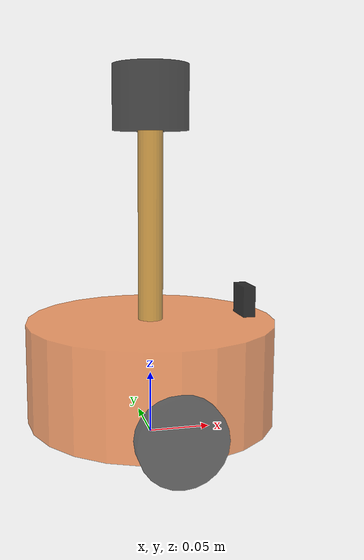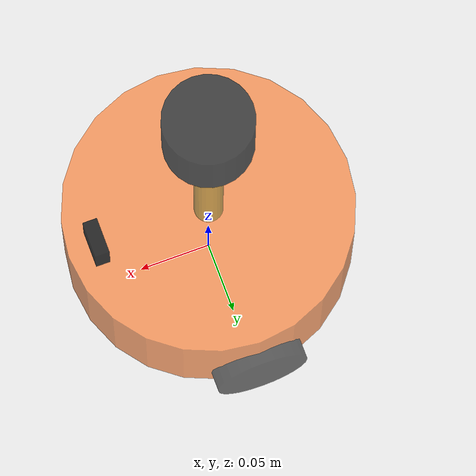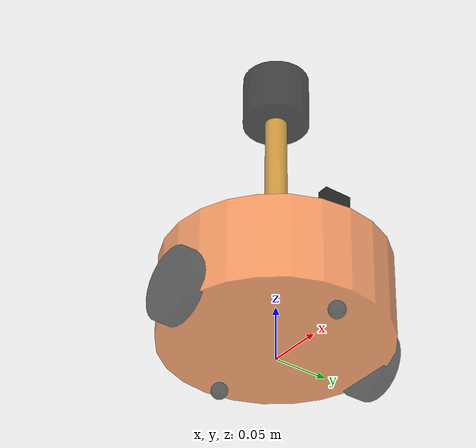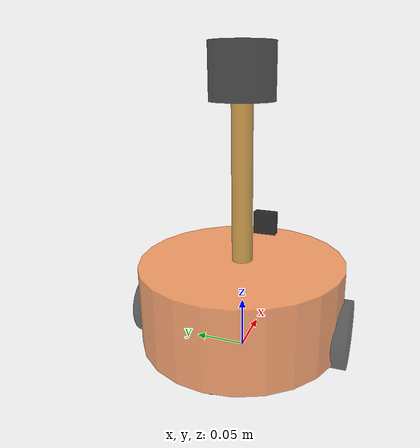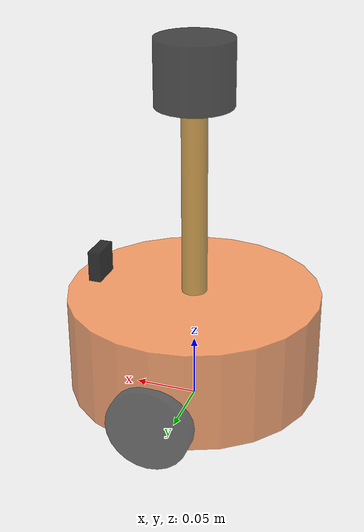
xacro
<robot name="mycar" xmlns:xacro="http://wiki.ros.org/xacro" >
    <!-- 包含底盘、摄像头与雷达的 Xacro 文件 -->
    <xacro:include filename="demo05_car_base.urdf.xacro"/>
    <xacro:include filename="demo06_car_camera.urdf.xacro"/>
    <xacro:include filename="demo07_car_laser.urdf.xacro"/>
</robot>

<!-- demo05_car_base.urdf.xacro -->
<robot name="mycar" xmlns:xacro="http://wiki.ros.org/xacro" >

    <xacro:property name="footprint_radius" value="0.001" />

    <!-- 1.添加 base_footprint -->
    <link name="base_footprint">
        <visual>
            <geometry>
                <sphere radius="${footprint_radius}" />
            </geometry>
        </visual>
    </link>

    <!-- 2.添加底盘 -->
    <!--
        形状：圆柱
        半径：0.1m
        高度：0.08m
        离地间距：0.015m
     -->
    <xacro:property name="base_radius" value="0.1" />
    <xacro:property name="base_length" value="0.08" />
    <xacro:property name="lidi_space" value="0.015" />
    <xacro:property name="base_joint_z" value="${base_length / 2 + lidi_space}" />

    <!-- 2-1 link -->
    <link name="base_link" >
        <visual>
            <geometry>
                <cylinder radius="${base_radius}" length="${base_length}" />
            </geometry>
            <origin xyz="0 0 0" rpy="0 0 0" />
            <material name="baselink_color" >
                <color rgba="1 0.5 0.2 0.7" />
            </material>
        </visual>
    </link>
    <!-- 2-2 joint -->
    <joint name="link2footprint" type="fixed" >
        <parent link="base_footprint" />
        <child link="base_link" />
        <!-- 关节z上的设置 = 车体高度/2 + 离地间距 -->
        <origin xyz="0 0 ${base_joint_z}" rpy="0 0 0" />
    </joint>

    <!-- 3.添加驱动轮 -->
    <!--
        形状:圆柱
        半径:0.0325m
        长度:0.015m
     -->
    <xacro:property name="wheel_radius" value="0.0325" />
    <xacro:property name="wheel_length" value="0.015" />
    <xacro:property name="PI" value="3.1415927" />
    <xacro:property name="y_origin" value="0.1" />
    <!-- 注意：结果是负数 -->
    <xacro:property name="wheel_joint_z" value="${ (base_length / 2 + lidi_space - wheel_radius) * (-1)}" />

    <!--
        wheel_name : left 或 right
        flag : 1 或 -1
     -->
    <xacro:macro name="wheel_func" params="wheel_name flag" >

        <!-- 3-1 link -->
        <link name="${wheel_name}_wheel" >
            <visual>
                <geometry>
                    <cylinder radius="${wheel_radius}" length="${wheel_length}" />
                </geometry>
                <origin xyz="0 0 0" rpy="${PI / 2} 0 0" />
                <material name="wheel_color" >
                    <color rgba="0 0 0 0.6" />
                </material>
            </visual>
        </link>

        <!-- 3-2 joint -->
        <joint name="${wheel_name}2link" type="continuous" >
            <parent link="base_link" />
            <child link="${wheel_name}_wheel" />
            <!--
                x = 0
                y = 底盘半径 = 0.1m
                z = 底盘中心点离地高度 - 左轮中心点离地高度 = 0.04 + 0.015 - 0.0325 = 0.0225m 取负值
            -->
            <origin xyz="0 ${y_origin * flag} ${wheel_joint_z}" rpy="0 0 0" />
            <axis xyz="0 1 0" />
        </joint>

    </xacro:macro>

    <xacro:wheel_func wheel_name="left" flag="1"/>
    <xacro:wheel_func wheel_name="right" flag="-1"/>

    <!-- 4.添加万向轮 -->
    <!--
        形状:球
        半径:0.0075m
     -->
    <xacro:property name="small_wheel_radius" value="0.0075" />
    <xacro:property name="x_origin" value="0.08" />
    <xacro:property name="small_joint_z" value="${(base_length / 2 + lidi_space - small_wheel_radius) * (-1)}" />

    <xacro:macro name="samll_wheel_func" params="small_wheel_name flag" >
        <!-- 4-1 link -->
        <link name="${small_wheel_name}_wheel" >
            <visual>
                <geometry>
                    <sphere radius="${small_wheel_radius}" />
                </geometry>
                <origin xyz="0 0 0" rpy="0 0 0" />
                <material name="wheel_color" >
                    <color rgba="0 0 0 0.6" />
                </material>
            </visual>
        </link>

        <!-- 4-2 joint -->
        <joint name="${small_wheel_name}2link" type="continuous" >
            <parent link="base_link" />
            <child link="${small_wheel_name}_wheel" />
            <!--
                x = 小于底盘半径 = 0.08m
                y = 0
                z = 底盘中心点离地高度 - 前轮中心点离地高度 = 0.04 + 0.015 - 0.0075 = 0.0475m 取负值
            -->
            <origin xyz="${x_origin * flag} 0 ${small_joint_z}" rpy="0 0 0" />
            <axis xyz="1 1 1" />
        </joint>
    </xacro:macro>

    <xacro:samll_wheel_func small_wheel_name="front" flag="1" />
    <xacro:samll_wheel_func small_wheel_name="back" flag="-1" />

</robot>

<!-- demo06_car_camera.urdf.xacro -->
<robot name="mycar" xmlns:xacro="http://wiki.ros.org/xacro" >
    <!-- 摄像头部件 -->
    <!-- 1.参数 -->
    <!--
        参数：
            连杆属性：厚度、宽度、高度
            关节属性：x y z
     -->
    <xacro:property name="camera_length" value="0.01" />  <!-- 厚度 x-->
    <xacro:property name="camera_width" value="0.025" />  <!-- 宽度 y-->
    <xacro:property name="camera_height" value="0.025" />  <!-- 高度 z-->
    <xacro:property name="joint_camera_x" value="0.08" />
    <xacro:property name="joint_camera_y" value="0" />
    <xacro:property name="joint_camera_z" value="${base_length / 2 + camera_height / 2}" />

    <!-- 2.连杆和关节 -->
    <link name="camera">
        <visual>
            <geometry>
                <box size="${camera_length} ${camera_width} ${camera_height}" />
            </geometry>
            <origin xyz="0 0 0" rpy="0 0 0" />
            <material name="black">
                <color rgba="0 0 0 0.8" />
            </material>
        </visual>
    </link>

    <joint name="camera2base" type="fixed" >
        <parent link="base_link" />
        <child link="camera" />
        <origin xyz="${joint_camera_x} ${joint_camera_y} ${joint_camera_z}" rpy="0 0 0" />
    </joint>

</robot>

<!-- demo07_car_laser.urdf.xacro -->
<robot name="mycar" xmlns:xacro="http://wiki.ros.org/xacro" >
    <!-- 雷达部件 -->
    <!-- 参数 -->
    <!--
        1.支架
            支架尺寸:半径 高度
            关节偏移量:x y z
        2.雷达
            雷达尺寸:半径 高度
            关节偏移量:x y z
     -->
    <xacro:property name="support_radius" value="0.01" />
    <xacro:property name="support_length" value="0.15" />
    <xacro:property name="joint_support_x" value="0" />
    <xacro:property name="joint_support_y" value="0" />
    <!-- z = 车体高度 / 2 + 支架高度 / 2 -->
    <xacro:property name="joint_support_z" value="${base_length / 2 + support_length / 2}" />

    <xacro:property name="laser_radius" value="0.03" />
    <xacro:property name="laser_length" value="0.05" />
    <xacro:property name="joint_laser_x" value="0" />
    <xacro:property name="joint_laser_y" value="0" />
    <!-- z = 支架高度 / 2 + 雷达高度 / 2 -->
    <xacro:property name="joint_laser_z" value="${support_length / 2 + laser_length / 2}" />

    <!-- 1.支架 -->
    <link name="support" >
        <visual>
            <geometry>
                <cylinder radius="${support_radius}" length="${support_length}" />
            </geometry>
            <origin xyz="0 0 0" rpy="0 0 0" />
            <material name="yellow" >
                <color rgba="0.8 0.5 0 0.7" />
            </material>
        </visual>
    </link>

    <joint name="support2base" type="fixed" >
        <parent link="base_link" />
        <child link="support" />
        <origin xyz="${joint_support_x} ${joint_support_y} ${joint_support_z}" rpy="0 0 0" />
    </joint>

    <!-- 2.雷达 -->
    <link name="laser" >
        <visual>
            <geometry>
                <cylinder radius="${laser_radius}" length="${laser_length}" />
            </geometry>
            <origin xyz="0 0 0" rpy="0 0 0" />
            <material name="black" >
                <color rgba="0 0 0 0.7" />
            </material>
        </visual>
    </link>

    <joint name="laser2support" type="fixed" >
        <parent link="support" />
        <child link="laser" />
        <origin xyz="${joint_laser_x} ${joint_laser_y} ${joint_laser_z}" rpy="0 0 0" />
    </joint>

</robot>
